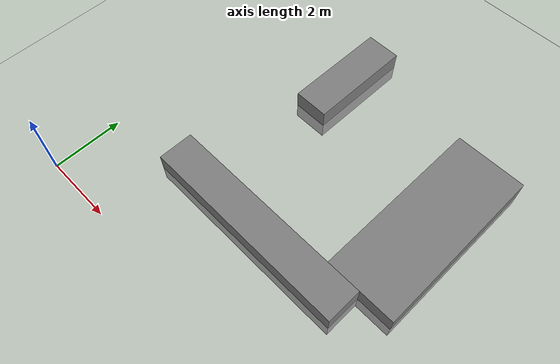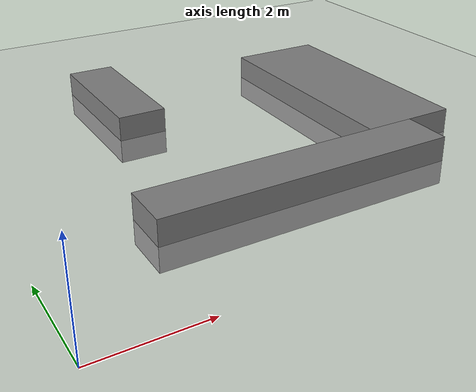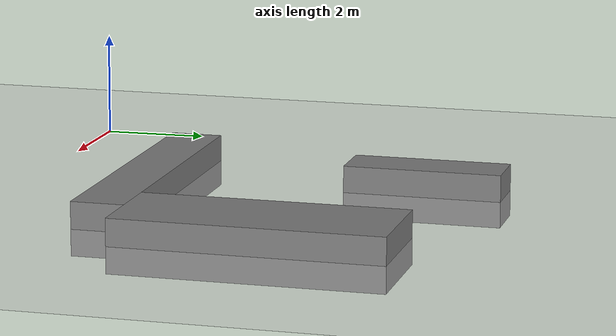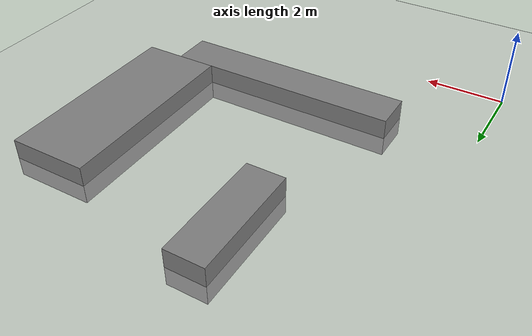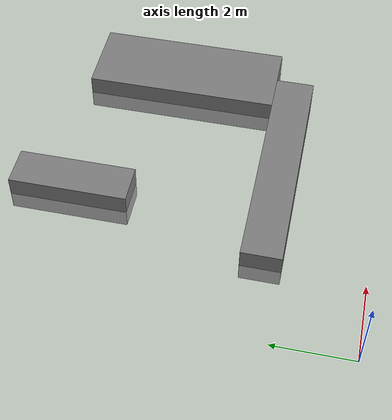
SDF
<?xml version="1.0" ?>
<sdf version="1.6">
  <world name="pso_world">
    <!-- Ground plane -->
    <include>
      <uri>model://ground_plane</uri>
    </include>

    <!-- Sun -->
    <include>
      <uri>model://sun</uri>
    </include>

    <!-- Obstacles matching our code -->
    <model name="obstacle1">
      <pose>5.0 2.5 0 0 0 0</pose>
      <static>true</static>
      <link name="link">
        <collision name="collision">
          <geometry>
            <box>
              <size>6.0 1.0 1.0</size>
            </box>
          </geometry>
        </collision>
        <visual name="visual">
          <geometry>
            <box>
              <size>6.0 1.0 1.0</size>
            </box>
          </geometry>
          <material>
            <ambient>0.5 0.5 0.5 1</ambient>
            <diffuse>0.5 0.5 0.5 1</diffuse>
          </material>
        </visual>
      </link>
    </model>

    <model name="obstacle2">
      <pose>3.5 7.5 0 0 0 0</pose>
      <static>true</static>
      <link name="link">
        <collision name="collision">
          <geometry>
            <box>
              <size>1.0 3.0 1.0</size>
            </box>
          </geometry>
        </collision>
        <visual name="visual">
          <geometry>
            <box>
              <size>1.0 3.0 1.0</size>
            </box>
          </geometry>
          <material>
            <ambient>0.5 0.5 0.5 1</ambient>
            <diffuse>0.5 0.5 0.5 1</diffuse>
          </material>
        </visual>
      </link>
    </model>

    <model name="obstacle3">
      <pose>8.0 5.5 0 0 0 0</pose>
      <static>true</static>
      <link name="link">
        <collision name="collision">
          <geometry>
            <box>
              <size>2.0 5.0 1.0</size>
            </box>
          </geometry>
        </collision>
        <visual name="visual">
          <geometry>
            <box>
              <size>2.0 5.0 1.0</size>
            </box>
          </geometry>
          <material>
            <ambient>0.5 0.5 0.5 1</ambient>
            <diffuse>0.5 0.5 0.5 1</diffuse>
          </material>
        </visual>
      </link>
    </model>
  </world>
</sdf>
